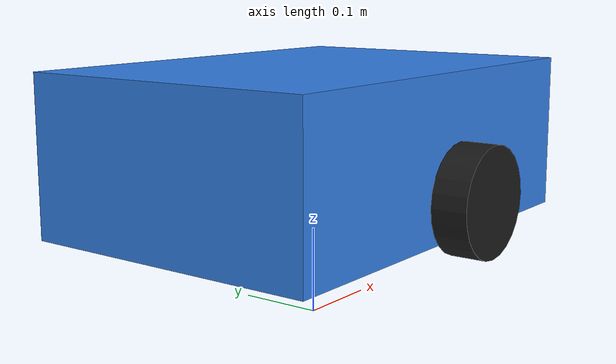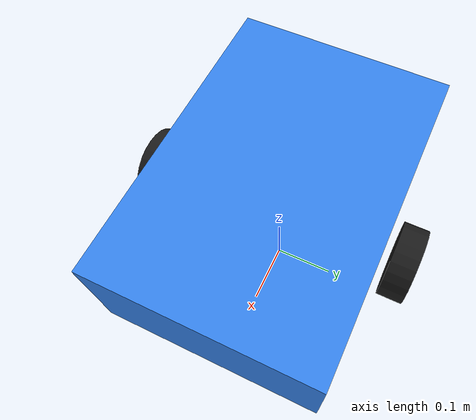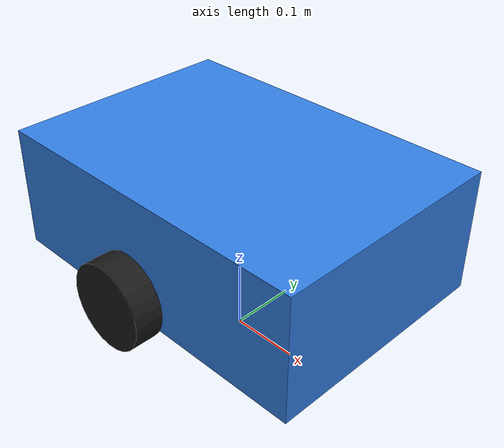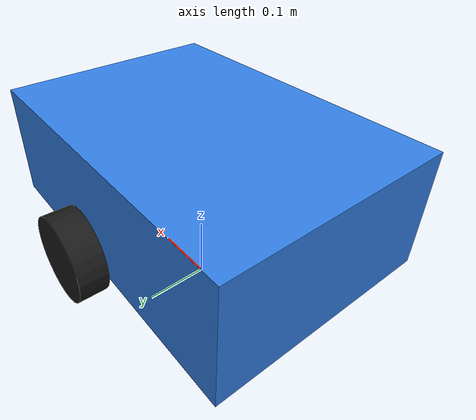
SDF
<?xml version="1.0"?>
<!-- Simple differential-drive robot for testing the Nav2 Editor SDF import.
     Uses only primitive geometry, so no external meshes are required. -->
<sdf version="1.7">
  <model name="diffbot">
    <pose>0 0 0.1 0 0 0</pose>

    <link name="base_link">
      <pose>0 0 0.1 0 0 0</pose>
      <visual name="body_visual">
        <geometry>
          <box>
            <size>0.5 0.35 0.18</size>
          </box>
        </geometry>
        <material>
          <diffuse>0.2 0.5 0.9 1</diffuse>
        </material>
      </visual>
      <collision name="body_collision">
        <geometry>
          <box>
            <size>0.5 0.35 0.18</size>
          </box>
        </geometry>
      </collision>
    </link>

    <link name="left_wheel">
      <pose>0 0.21 0.06 1.5707 0 0</pose>
      <visual name="left_wheel_visual">
        <geometry>
          <cylinder>
            <radius>0.06</radius>
            <length>0.04</length>
          </cylinder>
        </geometry>
        <material>
          <diffuse>0.1 0.1 0.1 1</diffuse>
        </material>
      </visual>
    </link>

    <link name="right_wheel">
      <pose>0 -0.21 0.06 1.5707 0 0</pose>
      <visual name="right_wheel_visual">
        <geometry>
          <cylinder>
            <radius>0.06</radius>
            <length>0.04</length>
          </cylinder>
        </geometry>
        <material>
          <diffuse>0.1 0.1 0.1 1</diffuse>
        </material>
      </visual>
    </link>

    <link name="caster">
      <pose>0.2 0 0.03 0 0 0</pose>
      <visual name="caster_visual">
        <geometry>
          <sphere>
            <radius>0.03</radius>
          </sphere>
        </geometry>
        <material>
          <diffuse>0.6 0.6 0.6 1</diffuse>
        </material>
      </visual>
    </link>

    <joint name="left_wheel_joint" type="revolute">
      <parent>base_link</parent>
      <child>left_wheel</child>
      <axis>
        <xyz>0 1 0</xyz>
      </axis>
    </joint>

    <joint name="right_wheel_joint" type="revolute">
      <parent>base_link</parent>
      <child>right_wheel</child>
      <axis>
        <xyz>0 1 0</xyz>
      </axis>
    </joint>

    <joint name="caster_joint" type="fixed">
      <parent>base_link</parent>
      <child>caster</child>
    </joint>
  </model>
</sdf>
